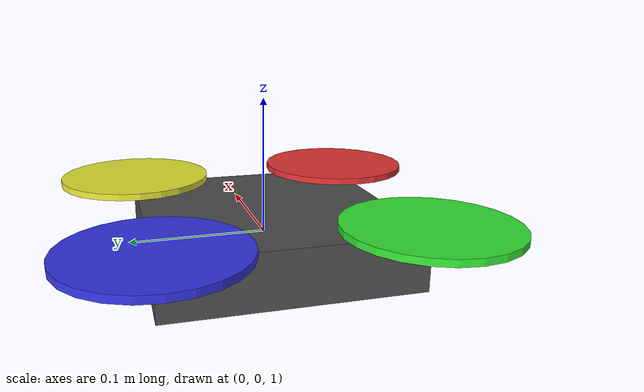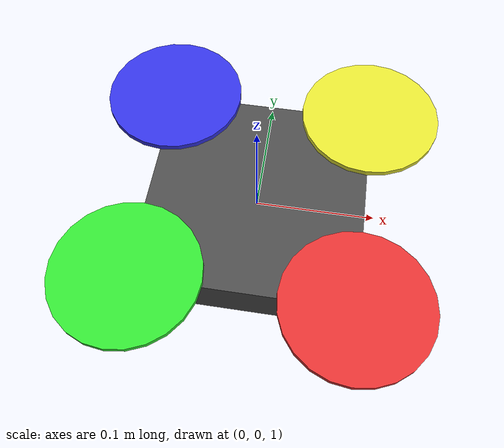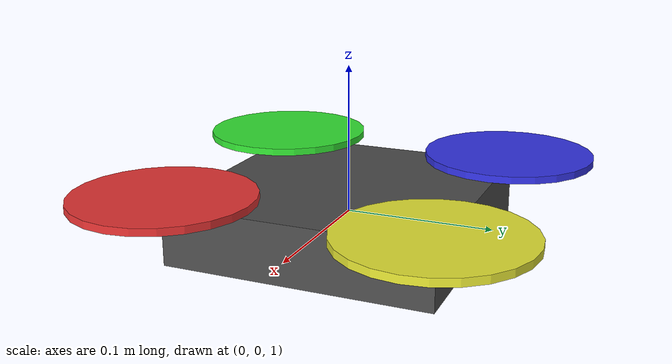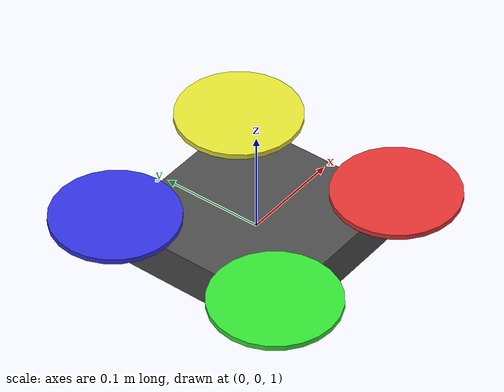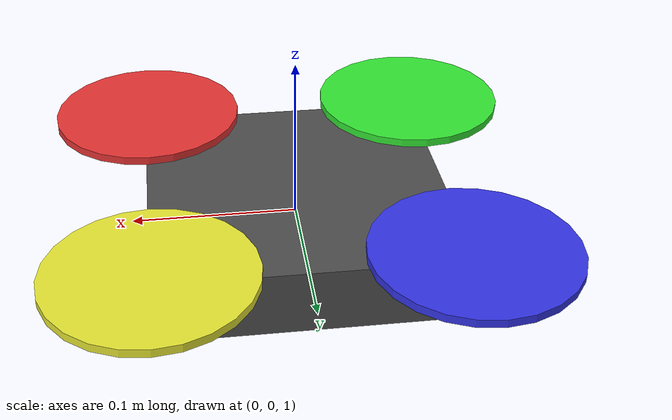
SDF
<?xml version="1.0" ?>
<sdf version="1.9">
  <world name="falcon">

    <physics name="default_physics" default="0" type="ode">
      <max_step_size>0.001</max_step_size>
      <real_time_factor>1.0</real_time_factor>
      <real_time_update_rate>1000</real_time_update_rate>
    </physics>

    <plugin filename="gz-sim-physics-system"           name="gz::sim::systems::Physics"/>
    <plugin filename="gz-sim-user-commands-system"     name="gz::sim::systems::UserCommands"/>
    <plugin filename="gz-sim-scene-broadcaster-system" name="gz::sim::systems::SceneBroadcaster"/>
    <plugin filename="gz-sim-sensors-system"           name="gz::sim::systems::Sensors">
      <render_engine>ogre2</render_engine>
    </plugin>
    <wind><linear_velocity>5 0 0</linear_velocity></wind>
    <plugin filename="gz-sim-wind-effects-system" name="gz::sim::systems::WindEffects">
      <force_approximation_scaling_factor>1.0</force_approximation_scaling_factor>
      <horizontal>
        <magnitude>
          <time_for_rise>10</time_for_rise>
          <sin><amplitude_percent>0.1</amplitude_percent><period>20</period></sin>
          <noise type="gaussian"><mean>0</mean><stddev>0.05</stddev></noise>
        </magnitude>
        <direction>
          <time_for_rise>20</time_for_rise>
          <sin><amplitude>10</amplitude><period>15</period></sin>
          <noise type="gaussian"><mean>0</mean><stddev>0.03</stddev></noise>
        </direction>
      </horizontal>
      <vertical><noise type="gaussian"><mean>0</mean><stddev>0.03</stddev></noise></vertical>
    </plugin>

    <plugin filename="gz-sim-imu-system"               name="gz::sim::systems::Imu"/>
    <plugin filename="gz-sim-navsat-system"            name="gz::sim::systems::NavSat"/>
    <plugin filename="gz-sim-magnetometer-system"      name="gz::sim::systems::Magnetometer"/>

    <magnetic_field>1.126e-6 21.470e-6 -43.0e-6</magnetic_field>

    <spherical_coordinates>
      <surface_model>EARTH_WGS84</surface_model>
      <world_frame_orientation>ENU</world_frame_orientation>
      <latitude_deg>47.3977</latitude_deg>
      <longitude_deg>8.5456</longitude_deg>
      <elevation>488.0</elevation>
      <heading_deg>0</heading_deg>
    </spherical_coordinates>

    <light name="sun" type="directional">
      <pose>0 0 10 0 0 0</pose>
      <cast_shadows>1</cast_shadows>
      <direction>-0.5 0.1 -0.9</direction>
      <diffuse>0.8 0.8 0.8 1</diffuse>
    </light>

    <model name="ground_plane">
      <static>1</static>
      <link name="ground_link">
        <collision name="c"><geometry><plane><normal>0 0 1</normal><size>100 100</size></plane></geometry></collision>
        <visual name="v"><geometry><plane><normal>0 0 1</normal><size>100 100</size></plane></geometry>
          <material>
            <ambient>0.5 0.5 0.5 1</ambient>
            <diffuse>0.5 0.5 0.5 1</diffuse>
          </material>
        </visual>
      </link>
    </model>

    <!-- ─── falcon-quad ─────────────────────────────────────────────── -->
    <model name="quad">
      <pose>0 0 1.0 0 0 0</pose>

      <!-- Body link — IMU + NavSat sensors. Mass + inertia of a
           5"-class quad (~700 g, ~250 mm wheelbase). -->
      <link name="base_link">
        <enable_wind>true</enable_wind>
        <gravity>true</gravity>
        <self_collide>false</self_collide>
        <inertial>
          <mass>2.000</mass>
          <inertia>
            <ixx>0.0217</ixx><iyy>0.0217</iyy><izz>0.0400</izz>
            <ixy>0</ixy><ixz>0</ixz><iyz>0</iyz>
          </inertia>
        </inertial>
        <collision name="base_collision">
          <geometry><box><size>0.180 0.180 0.040</size></box></geometry>
        </collision>
        <visual name="base_visual">
          <geometry><box><size>0.180 0.180 0.040</size></box></geometry>
          <material>
            <ambient>0.2 0.2 0.2 1</ambient>
            <diffuse>0.3 0.3 0.3 1</diffuse>
          </material>
        </visual>

        <sensor name="imu_sensor" type="imu">
          <always_on>1</always_on>
          <update_rate>1000</update_rate>
          <imu>
            <angular_velocity>
              <x><noise type="gaussian"><mean>0</mean><stddev>0.0009</stddev></noise></x>
              <y><noise type="gaussian"><mean>0</mean><stddev>0.0009</stddev></noise></y>
              <z><noise type="gaussian"><mean>0</mean><stddev>0.0009</stddev></noise></z>
            </angular_velocity>
            <linear_acceleration>
              <x><noise type="gaussian"><mean>0</mean><stddev>0.0021</stddev></noise></x>
              <y><noise type="gaussian"><mean>0</mean><stddev>0.0021</stddev></noise></y>
              <z><noise type="gaussian"><mean>0</mean><stddev>0.0021</stddev></noise></z>
            </linear_acceleration>
          </imu>
        </sensor>

        <!-- v0.22 — magnetometer: the real (non-truth) heading source.
             Reports the world magnetic_field in body frame. -->
        <sensor name="mag_sensor" type="magnetometer">
          <always_on>1</always_on>
          <update_rate>100</update_rate>
          <magnetometer>
            <x><noise type="gaussian"><mean>0</mean><stddev>1e-7</stddev></noise></x>
            <y><noise type="gaussian"><mean>0</mean><stddev>1e-7</stddev></noise></y>
            <z><noise type="gaussian"><mean>0</mean><stddev>1e-7</stddev></noise></z>
          </magnetometer>
        </sensor>

        <sensor name="navsat_sensor" type="navsat">
          <always_on>1</always_on>
          <update_rate>50</update_rate>
        </sensor>
      </link>

      <plugin filename="gz-sim-odometry-publisher-system"
              name="gz::sim::systems::OdometryPublisher">
        <odom_frame>world</odom_frame>
        <robot_base_frame>quad</robot_base_frame>
        <odom_publish_frequency>100</odom_publish_frequency>
        <dimensions>3</dimensions>
      </plugin>

      <!-- ─── 4 rotors (X-configuration) ─── -->
      >

      <link name="rotor_0">
        <gravity>true</gravity>
        <self_collide>false</self_collide>
        <pose>0.0884 -0.0884 0.025 0 0 0</pose>
        <inertial>
          <mass>0.010</mass>
          <inertia><ixx>5e-7</ixx><iyy>5e-7</iyy><izz>1e-6</izz>
            <ixy>0</ixy><ixz>0</ixz><iyz>0</iyz></inertia>
        </inertial>
        <collision name="rc0">
          <geometry><cylinder><radius>0.06</radius><length>0.005</length></cylinder></geometry>
        </collision>
        <visual name="r0v">
          <geometry><cylinder><radius>0.06</radius><length>0.005</length></cylinder></geometry>
          <material><diffuse>0.9 0.2 0.2 1</diffuse></material>
        </visual>
      </link>
      <joint name="rotor_0_joint" type="revolute">
        <parent>base_link</parent><child>rotor_0</child>
        <axis>
          <xyz>0 0 1</xyz>
          <limit><lower>-1e+16</lower><upper>1e+16</upper></limit>
          <dynamics><spring_reference>0</spring_reference><spring_stiffness>0</spring_stiffness></dynamics>
        </axis>
      </joint>

      <link name="rotor_1">
        <gravity>true</gravity>
        <self_collide>false</self_collide>
        <pose>-0.0884 -0.0884 0.025 0 0 0</pose>
        <inertial>
          <mass>0.010</mass>
          <inertia><ixx>5e-7</ixx><iyy>5e-7</iyy><izz>1e-6</izz>
            <ixy>0</ixy><ixz>0</ixz><iyz>0</iyz></inertia>
        </inertial>
        <collision name="rc1">
          <geometry><cylinder><radius>0.06</radius><length>0.005</length></cylinder></geometry>
        </collision>
        <visual name="r1v">
          <geometry><cylinder><radius>0.06</radius><length>0.005</length></cylinder></geometry>
          <material><diffuse>0.2 0.9 0.2 1</diffuse></material>
        </visual>
      </link>
      <joint name="rotor_1_joint" type="revolute">
        <parent>base_link</parent><child>rotor_1</child>
        <axis>
          <xyz>0 0 1</xyz>
          <limit><lower>-1e+16</lower><upper>1e+16</upper></limit>
          <dynamics><spring_reference>0</spring_reference><spring_stiffness>0</spring_stiffness></dynamics>
        </axis>
      </joint>

      <link name="rotor_2">
        <gravity>true</gravity>
        <self_collide>false</self_collide>
        <pose>-0.0884 0.0884 0.025 0 0 0</pose>
        <inertial>
          <mass>0.010</mass>
          <inertia><ixx>5e-7</ixx><iyy>5e-7</iyy><izz>1e-6</izz>
            <ixy>0</ixy><ixz>0</ixz><iyz>0</iyz></inertia>
        </inertial>
        <collision name="rc2">
          <geometry><cylinder><radius>0.06</radius><length>0.005</length></cylinder></geometry>
        </collision>
        <visual name="r2v">
          <geometry><cylinder><radius>0.06</radius><length>0.005</length></cylinder></geometry>
          <material><diffuse>0.2 0.2 0.9 1</diffuse></material>
        </visual>
      </link>
      <joint name="rotor_2_joint" type="revolute">
        <parent>base_link</parent><child>rotor_2</child>
        <axis>
          <xyz>0 0 1</xyz>
          <limit><lower>-1e+16</lower><upper>1e+16</upper></limit>
          <dynamics><spring_reference>0</spring_reference><spring_stiffness>0</spring_stiffness></dynamics>
        </axis>
      </joint>

      <link name="rotor_3">
        <gravity>true</gravity>
        <self_collide>false</self_collide>
        <pose>0.0884 0.0884 0.025 0 0 0</pose>
        <inertial>
          <mass>0.010</mass>
          <inertia><ixx>5e-7</ixx><iyy>5e-7</iyy><izz>1e-6</izz>
            <ixy>0</ixy><ixz>0</ixz><iyz>0</iyz></inertia>
        </inertial>
        <collision name="rc3">
          <geometry><cylinder><radius>0.06</radius><length>0.005</length></cylinder></geometry>
        </collision>
        <visual name="r3v">
          <geometry><cylinder><radius>0.06</radius><length>0.005</length></cylinder></geometry>
          <material><diffuse>0.9 0.9 0.2 1</diffuse></material>
        </visual>
      </link>
      <joint name="rotor_3_joint" type="revolute">
        <parent>base_link</parent><child>rotor_3</child>
        <axis>
          <xyz>0 0 1</xyz>
          <limit><lower>-1e+16</lower><upper>1e+16</upper></limit>
          <dynamics><spring_reference>0</spring_reference><spring_stiffness>0</spring_stiffness></dynamics>
        </axis>
      </joint>

      <plugin filename="gz-sim-multicopter-motor-model-system"
              name="gz::sim::systems::MulticopterMotorModel">
        <jointName>rotor_0_joint</jointName>
        <linkName>rotor_0</linkName>
        <turningDirection>ccw</turningDirection>
        <timeConstantUp>0.0125</timeConstantUp>
        <timeConstantDown>0.025</timeConstantDown>
        <maxRotVelocity>1000.0</maxRotVelocity>
        <motorConstant>8.55e-06</motorConstant>
        <momentConstant>0.016</momentConstant>
        <commandSubTopic>command/motor_speed</commandSubTopic>
        <motorNumber>0</motorNumber>
        <rotorDragCoefficient>8.06e-05</rotorDragCoefficient>
        <rollingMomentCoefficient>1e-06</rollingMomentCoefficient>
        <rotorVelocitySlowdownSim>10</rotorVelocitySlowdownSim>
        <motorType>velocity</motorType>
      </plugin>
      <plugin filename="gz-sim-multicopter-motor-model-system"
              name="gz::sim::systems::MulticopterMotorModel">
        <jointName>rotor_1_joint</jointName>
        <linkName>rotor_1</linkName>
        <turningDirection>cw</turningDirection>
        <timeConstantUp>0.0125</timeConstantUp>
        <timeConstantDown>0.025</timeConstantDown>
        <maxRotVelocity>1000.0</maxRotVelocity>
        <motorConstant>8.55e-06</motorConstant>
        <momentConstant>0.016</momentConstant>
        <commandSubTopic>command/motor_speed</commandSubTopic>
        <motorNumber>1</motorNumber>
        <rotorDragCoefficient>8.06e-05</rotorDragCoefficient>
        <rollingMomentCoefficient>1e-06</rollingMomentCoefficient>
        <rotorVelocitySlowdownSim>10</rotorVelocitySlowdownSim>
        <motorType>velocity</motorType>
      </plugin>
      <plugin filename="gz-sim-multicopter-motor-model-system"
              name="gz::sim::systems::MulticopterMotorModel">
        <jointName>rotor_2_joint</jointName>
        <linkName>rotor_2</linkName>
        <turningDirection>ccw</turningDirection>
        <timeConstantUp>0.0125</timeConstantUp>
        <timeConstantDown>0.025</timeConstantDown>
        <maxRotVelocity>1000.0</maxRotVelocity>
        <motorConstant>8.55e-06</motorConstant>
        <momentConstant>0.016</momentConstant>
        <commandSubTopic>command/motor_speed</commandSubTopic>
        <motorNumber>2</motorNumber>
        <rotorDragCoefficient>8.06e-05</rotorDragCoefficient>
        <rollingMomentCoefficient>1e-06</rollingMomentCoefficient>
        <rotorVelocitySlowdownSim>10</rotorVelocitySlowdownSim>
        <motorType>velocity</motorType>
      </plugin>
      <plugin filename="gz-sim-multicopter-motor-model-system"
              name="gz::sim::systems::MulticopterMotorModel">
        <jointName>rotor_3_joint</jointName>
        <linkName>rotor_3</linkName>
        <turningDirection>cw</turningDirection>
        <timeConstantUp>0.0125</timeConstantUp>
        <timeConstantDown>0.025</timeConstantDown>
        <maxRotVelocity>1000.0</maxRotVelocity>
        <motorConstant>8.55e-06</motorConstant>
        <momentConstant>0.016</momentConstant>
        <commandSubTopic>command/motor_speed</commandSubTopic>
        <motorNumber>3</motorNumber>
        <rotorDragCoefficient>8.06e-05</rotorDragCoefficient>
        <rollingMomentCoefficient>1e-06</rollingMomentCoefficient>
        <rotorVelocitySlowdownSim>10</rotorVelocitySlowdownSim>
        <motorType>velocity</motorType>
      </plugin>

    </model>
  </world>
</sdf>
